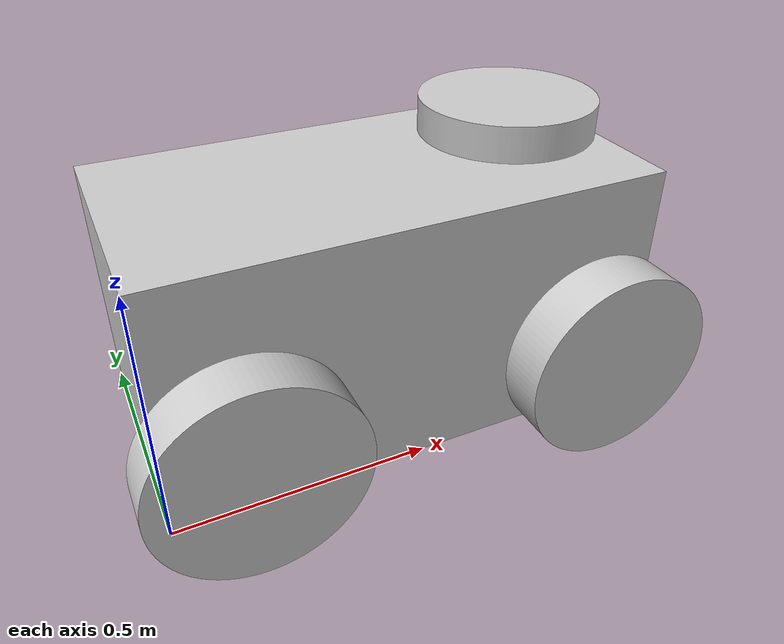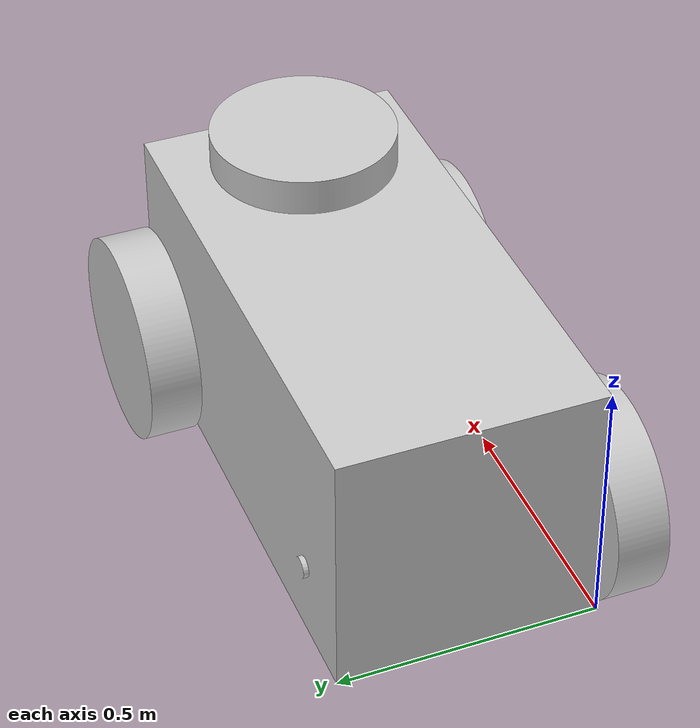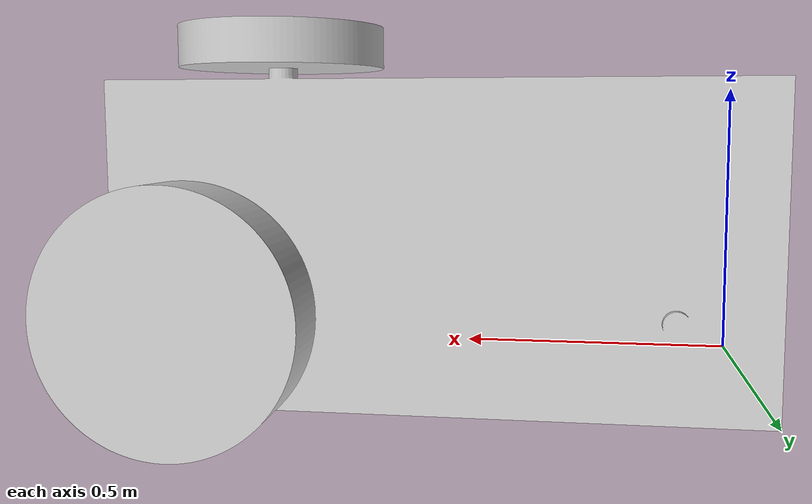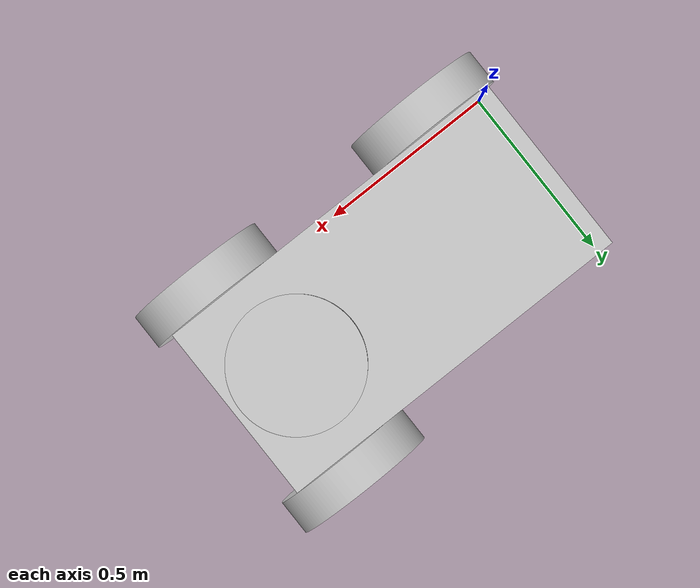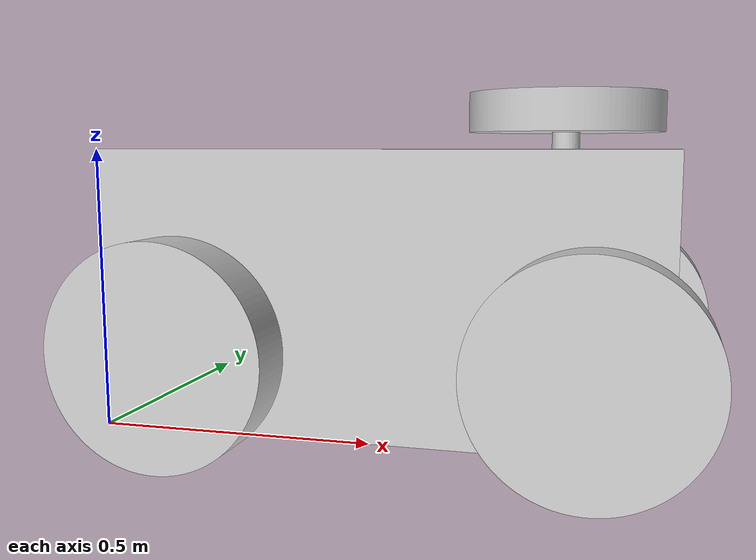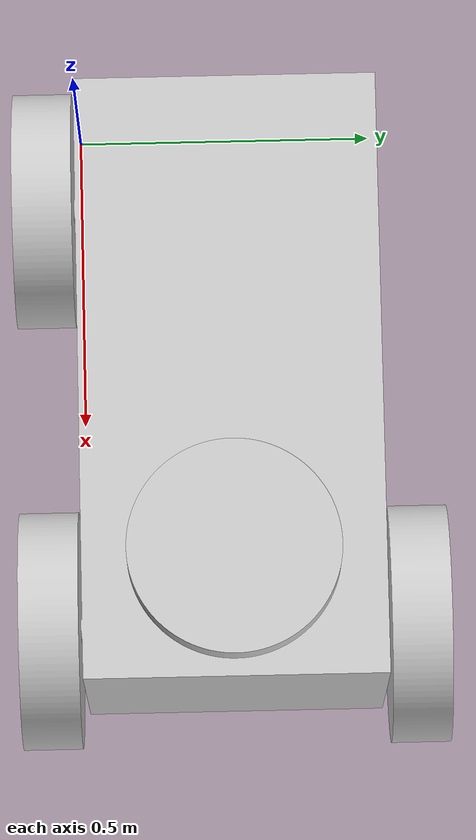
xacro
<?xml version="1.0" ?>
<robot name="car" xmlns:xacro="http://www.ros.org/wiki/xacro">

<xacro:include filename="$(find car_description)/urdf/materials.xacro" />
<xacro:include filename="$(find car_description)/urdf/car.trans" />
<xacro:include filename="$(find car_description)/urdf/car.gazebo" />
<xacro:include filename="$(find car_description)/urdf/car.plugin.xacro" />

<link name="base_link">
  <inertial>
    <origin xyz="0.500073167158104 0.25000000000000006 0.25004231448306036" rpy="0 0 0"/>
    <mass value="1963.3569872059904"/>
    <inertia ixx="81.833055" iyy="204.557202" izz="204.546447" ixy="0.0" iyz="0.0" ixz="-0.036262"/>
  </inertial>
  <visual>
    <origin xyz="0 0 0" rpy="0 0 0"/>
    <geometry>
      <mesh filename="file://$(find car_description)/meshes/base_link.stl" scale="0.001 0.001 0.001"/>
    </geometry>
    <material name="silver"/>
  </visual>
  <collision>
    <origin xyz="0 0 0" rpy="0 0 0"/>
    <geometry>
      <mesh filename="file://$(find car_description)/meshes/base_link.stl" scale="0.001 0.001 0.001"/>
    </geometry>
  </collision>
</link>

<link name="Wheel_front_right_1">
  <inertial>
    <origin xyz="0.0 -0.05000000000000001 0.0" rpy="0 0 0"/>
    <mass value="98.6460093227195"/>
    <inertia ixx="1.068665" iyy="1.97292" izz="1.068665" ixy="-0.0" iyz="-0.0" ixz="0.0"/>
  </inertial>
  <visual>
    <origin xyz="-0.875 0.01 -0.15" rpy="0 0 0"/>
    <geometry>
      <mesh filename="file://$(find car_description)/meshes/Wheel_front_right_1.stl" scale="0.001 0.001 0.001"/>
    </geometry>
    <material name="silver"/>
  </visual>
  <collision>
    <origin xyz="-0.875 0.01 -0.15" rpy="0 0 0"/>
    <geometry>
      <mesh filename="file://$(find car_description)/meshes/Wheel_front_right_1.stl" scale="0.001 0.001 0.001"/>
    </geometry>
  </collision>
</link>

<link name="Wheel_front_left_1">
  <inertial>
    <origin xyz="0.0 0.050000000000000044 0.0" rpy="0 0 0"/>
    <mass value="98.6460093227195"/>
    <inertia ixx="1.068665" iyy="1.97292" izz="1.068665" ixy="0.0" iyz="0.0" ixz="0.0"/>
  </inertial>
  <visual>
    <origin xyz="-0.875 -0.51 -0.15" rpy="0 0 0"/>
    <geometry>
      <mesh filename="file://$(find car_description)/meshes/Wheel_front_left_1.stl" scale="0.001 0.001 0.001"/>
    </geometry>
    <material name="silver"/>
  </visual>
  <collision>
    <origin xyz="-0.875 -0.51 -0.15" rpy="0 0 0"/>
    <geometry>
      <mesh filename="file://$(find car_description)/meshes/Wheel_front_left_1.stl" scale="0.001 0.001 0.001"/>
    </geometry>
  </collision>
</link>

<link name="Wheel_back_left_1">
  <inertial>
    <origin xyz="-2.7755575615628914e-17 0.050000000000000155 0.0" rpy="0 0 0"/>
    <mass value="98.6460093227195"/>
    <inertia ixx="1.068665" iyy="1.97292" izz="1.068665" ixy="0.0" iyz="0.0" ixz="0.0"/>
  </inertial>
  <visual>
    <origin xyz="-0.15 -0.51 -0.15" rpy="0 0 0"/>
    <geometry>
      <mesh filename="file://$(find car_description)/meshes/Wheel_back_left_1.stl" scale="0.001 0.001 0.001"/>
    </geometry>
    <material name="silver"/>
  </visual>
  <collision>
    <origin xyz="-0.15 -0.51 -0.15" rpy="0 0 0"/>
    <geometry>
      <mesh filename="file://$(find car_description)/meshes/Wheel_back_left_1.stl" scale="0.001 0.001 0.001"/>
    </geometry>
  </collision>
</link>

<link name="Wheel_back_right_1">
  <inertial>
    <origin xyz="-2.7755575615628914e-17 -0.05000000000000001 0.0" rpy="0 0 0"/>
    <mass value="98.6460093227195"/>
    <inertia ixx="1.068665" iyy="1.97292" izz="1.068665" ixy="0.0" iyz="-0.0" ixz="0.0"/>
  </inertial>
  <visual>
    <origin xyz="-0.15 0.01 -0.15" rpy="0 0 0"/>
    <geometry>
      <mesh filename="file://$(find car_description)/meshes/Wheel_back_right_1.stl" scale="0.001 0.001 0.001"/>
    </geometry>
    <material name="silver"/>
  </visual>
  <collision>
    <origin xyz="-0.15 0.01 -0.15" rpy="0 0 0"/>
    <geometry>
      <mesh filename="file://$(find car_description)/meshes/Wheel_back_right_1.stl" scale="0.001 0.001 0.001"/>
    </geometry>
  </collision>
</link>

<link name="Laser_1">
  <inertial>
    <origin xyz="-2.220446049250313e-16 5.551115123125783e-17 0.03499999999999992" rpy="0 0 0"/>
    <mass value="52.86809562139498"/>
    <inertia ixx="0.426359" iyy="0.426359" izz="0.809543" ixy="0.0" iyz="-0.0" ixz="0.0"/>
  </inertial>
  <visual>
    <origin xyz="-0.8 -0.25 -0.53" rpy="0 0 0"/>
    <geometry>
      <mesh filename="file://$(find car_description)/meshes/Laser_1.stl" scale="0.001 0.001 0.001"/>
    </geometry>
    <material name="silver"/>
  </visual>
  <collision>
    <origin xyz="-0.8 -0.25 -0.53" rpy="0 0 0"/>
    <geometry>
      <mesh filename="file://$(find car_description)/meshes/Laser_1.stl" scale="0.001 0.001 0.001"/>
    </geometry>
  </collision>
</link>

<joint name="revolute_right_wheel" type="continuous">
  <origin xyz="0.875 -0.01 0.15" rpy="0 0 0"/>
  <parent link="base_link"/>
  <child link="Wheel_front_right_1"/>
  <axis xyz="0.0 -1.0 0.0"/>
</joint>

<joint name="revolute_left_wheel" type="continuous">
  <origin xyz="0.875 0.51 0.15" rpy="0 0 0"/>
  <parent link="base_link"/>
  <child link="Wheel_front_left_1"/>
  <axis xyz="0.0 1.0 0.0"/>
</joint>

<joint name="revolute_back_left_wheel" type="continuous">
  <origin xyz="0.15 0.51 0.15" rpy="0 0 0"/>
  <parent link="base_link"/>
  <child link="Wheel_back_left_1"/>
  <axis xyz="0.0 1.0 0.0"/>
</joint>

<joint name="revolute_back_right_wheel" type="continuous">
  <origin xyz="0.15 -0.01 0.15" rpy="0 0 0"/>
  <parent link="base_link"/>
  <child link="Wheel_back_right_1"/>
  <axis xyz="0.0 -1.0 0.0"/>
</joint>

<joint name="revolute_laser" type="continuous">
  <origin xyz="0.8 0.25 0.53" rpy="0 0 0"/>
  <parent link="base_link"/>
  <child link="Laser_1"/>
  <axis xyz="0.0 0.0 1.0"/>
</joint>

</robot>

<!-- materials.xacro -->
<robot name="car" xmlns:xacro="http://www.ros.org/wiki/xacro" >

<material name="silver">
  <color rgba="0.800 0.800 0.800 1.000"/>
</material>

</robot>

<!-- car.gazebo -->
<robot name="car" xmlns:xacro="http://www.ros.org/wiki/xacro" >

<xacro:property name="body_color" value="Gazebo/Silver" />

<gazebo>
  <plugin name="control" filename="libgazebo_ros_control.so"/>
</gazebo>
<gazebo reference="base_link">
  <material>${body_color}</material>
  <mu1>0.2</mu1>
  <mu2>0.2</mu2>
  <self_collide>true</self_collide>
  <gravity>true</gravity>
</gazebo>

<gazebo reference="wheel_right_back_1">
  <material>${body_color}</material>
  <mu1>0.2</mu1>
  <mu2>0.2</mu2>
  <self_collide>true</self_collide>
</gazebo>

<gazebo reference="wheel_right_front_1">
  <material>${body_color}</material>
  <mu1>0.2</mu1>
  <mu2>0.2</mu2>
  <self_collide>true</self_collide>
</gazebo>

<gazebo reference="wheel_left_front_1">
  <material>${body_color}</material>
  <mu1>0.2</mu1>
  <mu2>0.2</mu2>
  <self_collide>true</self_collide>
</gazebo>

<gazebo reference="wheel_left_back_1">
  <material>${body_color}</material>
  <mu1>0.2</mu1>
  <mu2>0.2</mu2>
  <self_collide>true</self_collide>
</gazebo>

<gazebo reference="laser_1">
  <material>${body_color}</material>
  <mu1>0.2</mu1>
  <mu2>0.2</mu2>
  <self_collide>true</self_collide>
</gazebo>

</robot>
